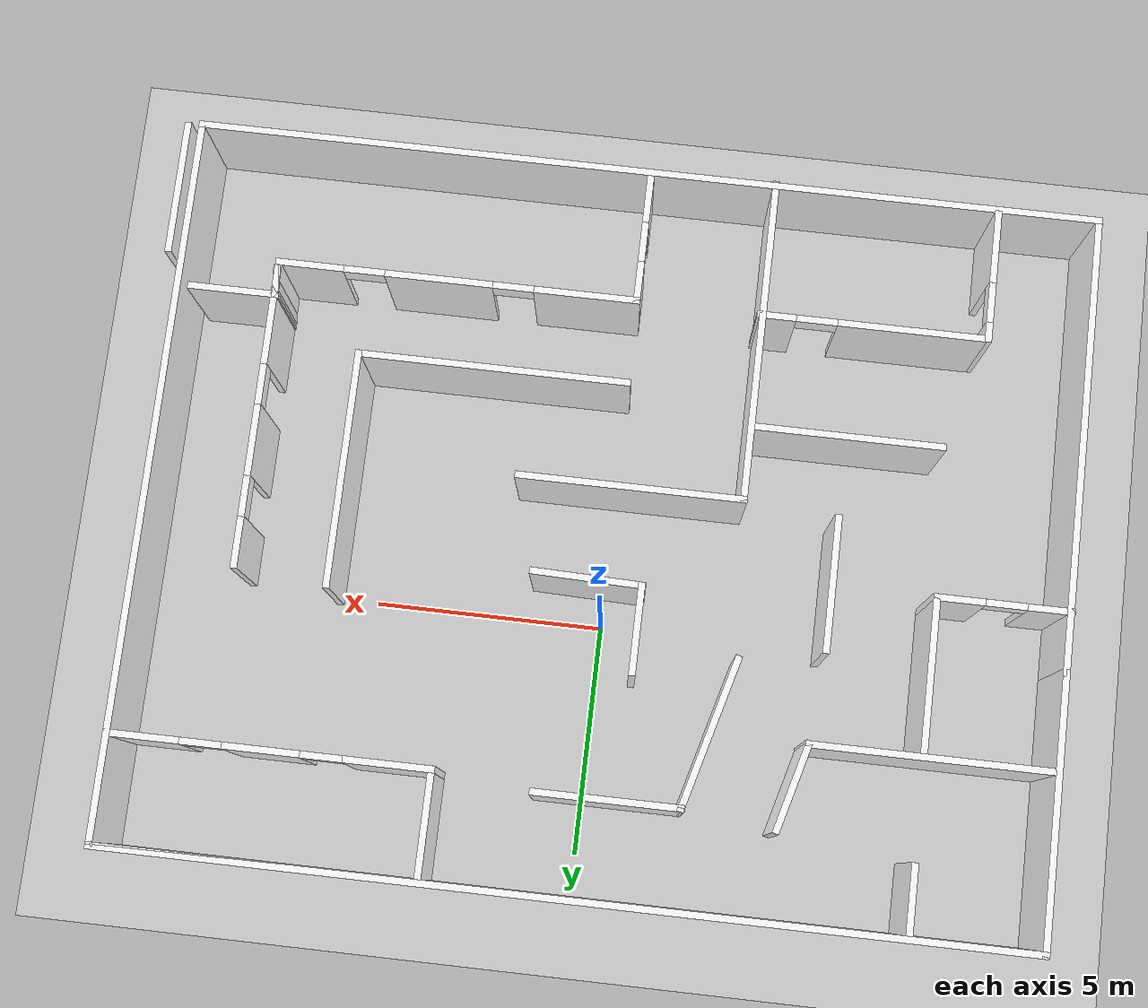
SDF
<?xml version="1.0"?>
<sdf version="1.7">
  <world name="model_world">
    <gravity>0 0 -9.8</gravity>
    <magnetic_field>6e-06 2.3e-05 -4.2e-05</magnetic_field>

    <physics name="default_physics" default="0" type="ode">
      <max_step_size>0.001</max_step_size>
      <real_time_factor>1.0</real_time_factor>
      <real_time_update_rate>1000</real_time_update_rate>
    </physics>

    <include>
      <uri>model://ground_plane</uri>
    </include>
    <include>
      <uri>model://sun</uri>
    </include>
    <include>
      <uri>model://world_model</uri>
    </include>

    <scene>
      <ambient>0.4 0.4 0.4 1</ambient>
      <background>0.7 0.7 0.7 1</background>
      <shadows>true</shadows>
    </scene>
  </world>
</sdf>

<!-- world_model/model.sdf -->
<sdf version='1.7'>
  <model name='Untitled'>
    <pose>0.198493 -1.95427 0 0 -0 0</pose>
    <link name='Wall_100'>
      <collision name='Wall_100_Collision'>
        <geometry>
          <box>
            <size>2.49224 0.15 2.5</size>
          </box>
        </geometry>
        <pose>0 0 1.25 0 -0 0</pose>
      </collision>
      <visual name='Wall_100_Visual'>
        <pose>0 0 1.25 0 -0 0</pose>
        <geometry>
          <box>
            <size>2.49224 0.15 2.5</size>
          </box>
        </geometry>
        <material>
          <script>
            <uri>file://media/materials/scripts/gazebo.material</uri>
            <name>Gazebo/Brick</name>
          </script>
          <ambient>1 1 1 1</ambient>
        </material>
        <meta>
          <layer>0</layer>
        </meta>
      </visual>
      <pose>0.15339 1.22069 0 0 -0 -0.025976</pose>
    </link>
    <link name='Wall_102'>
      <collision name='Wall_102_Collision'>
        <geometry>
          <box>
            <size>3 0.15 2.5</size>
          </box>
        </geometry>
        <pose>0 0 1.25 0 -0 0</pose>
      </collision>
      <visual name='Wall_102_Visual'>
        <pose>0 0 1.25 0 -0 0</pose>
        <geometry>
          <box>
            <size>3 0.15 2.5</size>
          </box>
        </geometry>
        <material>
          <script>
            <uri>file://media/materials/scripts/gazebo.material</uri>
            <name>Gazebo/Brick</name>
          </script>
          <ambient>1 1 1 1</ambient>
        </material>
        <meta>
          <layer>0</layer>
        </meta>
      </visual>
      <pose>-5.01409 0.75488 0 0 -0 -1.5708</pose>
    </link>
    <link name='Wall_104'>
      <collision name='Wall_104_Collision'>
        <geometry>
          <box>
            <size>3.5 0.15 2.5</size>
          </box>
        </geometry>
        <pose>0 0 1.25 0 -0 0</pose>
      </collision>
      <visual name='Wall_104_Visual'>
        <pose>0 0 1.25 0 -0 0</pose>
        <geometry>
          <box>
            <size>3.5 0.15 2.5</size>
          </box>
        </geometry>
        <material>
          <script>
            <uri>file://media/materials/scripts/gazebo.material</uri>
            <name>Gazebo/Brick</name>
          </script>
          <ambient>1 1 1 1</ambient>
        </material>
        <meta>
          <layer>0</layer>
        </meta>
      </visual>
      <pose>-2.75774 4.19362 0 0 -0 -1.8326</pose>
    </link>
    <link name='Wall_14'>
      <collision name='Wall_14_Collision'>
        <geometry>
          <box>
            <size>3.25 0.15 2.5</size>
          </box>
        </geometry>
        <pose>0 0 1.25 0 -0 0</pose>
      </collision>
      <visual name='Wall_14_Visual'>
        <pose>0 0 1.25 0 -0 0</pose>
        <geometry>
          <box>
            <size>3.25 0.15 2.5</size>
          </box>
        </geometry>
        <material>
          <script>
            <uri>file://media/materials/scripts/gazebo.material</uri>
            <name>Gazebo/Brick</name>
          </script>
          <ambient>1 1 1 1</ambient>
        </material>
        <meta>
          <layer>0</layer>
        </meta>
      </visual>
      <pose>-0.774218 5.81154 0 0 -0 0</pose>
    </link>
    <link name='Wall_28'>
      <collision name='Wall_28_Collision'>
        <geometry>
          <box>
            <size>6 0.15 2.5</size>
          </box>
        </geometry>
        <pose>0 0 1.25 0 -0 0</pose>
      </collision>
      <visual name='Wall_28_Visual'>
        <pose>0 0 1.25 0 -0 0</pose>
        <geometry>
          <box>
            <size>6 0.15 2.5</size>
          </box>
        </geometry>
        <material>
          <script>
            <uri>file://media/materials/scripts/gazebo.material</uri>
            <name>Gazebo/Brick</name>
          </script>
          <ambient>1 1 1 1</ambient>
        </material>
        <meta>
          <layer>0</layer>
        </meta>
      </visual>
      <pose>-10.0726 5.01521 0 0 -0 1.5708</pose>
    </link>
    <link name='Wall_29'>
      <collision name='Wall_29_Collision'>
        <geometry>
          <box>
            <size>20 0.15 2.5</size>
          </box>
        </geometry>
        <pose>0 0 1.25 0 -0 0</pose>
      </collision>
      <visual name='Wall_29_Visual'>
        <pose>0 0 1.25 0 -0 0</pose>
        <geometry>
          <box>
            <size>20 0.15 2.5</size>
          </box>
        </geometry>
        <material>
          <script>
            <uri>file://media/materials/scripts/gazebo.material</uri>
            <name>Gazebo/Brick</name>
          </script>
          <ambient>1 1 1 1</ambient>
        </material>
        <meta>
          <layer>0</layer>
        </meta>
      </visual>
      <pose>-0.147617 7.94021 0 0 -0 0</pose>
    </link>
    <link name='Wall_31'>
      <collision name='Wall_31_Collision'>
        <geometry>
          <box>
            <size>16 0.15 2.5</size>
          </box>
        </geometry>
        <pose>0 0 1.25 0 -0 0</pose>
      </collision>
      <visual name='Wall_31_Visual'>
        <pose>0 0 1.25 0 -0 0</pose>
        <geometry>
          <box>
            <size>16 0.15 2.5</size>
          </box>
        </geometry>
        <material>
          <script>
            <uri>file://media/materials/scripts/gazebo.material</uri>
            <name>Gazebo/Brick</name>
          </script>
          <ambient>1 1 1 1</ambient>
        </material>
        <meta>
          <layer>0</layer>
        </meta>
      </visual>
      <pose>9.77738 0.015206 0 0 -0 -1.5708</pose>
    </link>
    <link name='Wall_32'>
      <collision name='Wall_32_Collision'>
        <geometry>
          <box>
            <size>20 0.15 2.5</size>
          </box>
        </geometry>
        <pose>0 0 1.25 0 -0 0</pose>
      </collision>
      <visual name='Wall_32_Visual'>
        <pose>0 0 1.25 0 -0 0</pose>
        <geometry>
          <box>
            <size>20 0.15 2.5</size>
          </box>
        </geometry>
        <material>
          <script>
            <uri>file://media/materials/scripts/gazebo.material</uri>
            <name>Gazebo/Brick</name>
          </script>
          <ambient>1 1 1 1</ambient>
        </material>
        <meta>
          <layer>0</layer>
        </meta>
      </visual>
      <pose>-0.147617 -7.90979 0 0 -0 3.14159</pose>
    </link>
    <link name='Wall_33'>
      <collision name='Wall_33_Collision'>
        <geometry>
          <box>
            <size>10.15 0.15 2.5</size>
          </box>
        </geometry>
        <pose>0 0 1.25 0 -0 0</pose>
      </collision>
      <visual name='Wall_33_Visual'>
        <pose>0 0 1.25 0 -0 0</pose>
        <geometry>
          <box>
            <size>10.15 0.15 2.5</size>
          </box>
        </geometry>
        <material>
          <script>
            <uri>file://media/materials/scripts/gazebo.material</uri>
            <name>Gazebo/Brick</name>
          </script>
          <ambient>1 1 1 1</ambient>
        </material>
        <meta>
          <layer>0</layer>
        </meta>
      </visual>
      <pose>-10.0726 -2.90979 0 0 -0 1.5708</pose>
    </link>
    <link name='Wall_44'>
      <collision name='Wall_44_Collision'>
        <geometry>
          <box>
            <size>1.5 0.15 2.5</size>
          </box>
        </geometry>
        <pose>0 0 1.25 0 -0 0</pose>
      </collision>
      <visual name='Wall_44_Visual'>
        <pose>0 0 1.25 0 -0 0</pose>
        <geometry>
          <box>
            <size>1.5 0.15 2.5</size>
          </box>
        </geometry>
        <material>
          <script>
            <uri>file://media/materials/scripts/gazebo.material</uri>
            <name>Gazebo/Brick</name>
          </script>
          <ambient>1 1 1 1</ambient>
        </material>
        <meta>
          <layer>0</layer>
        </meta>
      </visual>
      <pose>-7.24931 7.1168 0 0 -0 -1.5708</pose>
    </link>
    <link name='Wall_46'>
      <collision name='Wall_46_Collision'>
        <geometry>
          <box>
            <size>3 0.15 2.5</size>
          </box>
        </geometry>
        <pose>0 0 1.25 0 -0 0</pose>
      </collision>
      <visual name='Wall_46_Visual'>
        <pose>0 0 1.25 0 -0 0</pose>
        <geometry>
          <box>
            <size>3 0.15 2.5</size>
          </box>
        </geometry>
        <material>
          <script>
            <uri>file://media/materials/scripts/gazebo.material</uri>
            <name>Gazebo/Brick</name>
          </script>
          <ambient>1 1 1 1</ambient>
        </material>
        <meta>
          <layer>0</layer>
        </meta>
      </visual>
      <pose>10.0887 -6.41515 0 0 -0 1.5708</pose>
    </link>
    <link name='Wall_53'>
      <collision name='Wall_53_Collision'>
        <geometry>
          <box>
            <size>2 0.15 2.5</size>
          </box>
        </geometry>
        <pose>0 0 1.25 0 -0 0</pose>
      </collision>
      <visual name='Wall_53_Visual'>
        <pose>0 0 1.25 0 -0 0</pose>
        <geometry>
          <box>
            <size>2 0.15 2.5</size>
          </box>
        </geometry>
        <material>
          <script>
            <uri>file://media/materials/scripts/gazebo.material</uri>
            <name>Gazebo/Brick</name>
          </script>
          <ambient>1 1 1 1</ambient>
        </material>
        <meta>
          <layer>0</layer>
        </meta>
      </visual>
      <pose>8.54888 -4.21868 0 0 -0 3.14159</pose>
    </link>
    <link name='Wall_54'>
      <collision name='Wall_54_Collision'>
        <geometry>
          <box>
            <size>0.751781 0.15 2.5</size>
          </box>
        </geometry>
        <pose>0 0 1.25 0 -0 0</pose>
      </collision>
      <visual name='Wall_54_Visual'>
        <pose>0 0 1.25 0 -0 0</pose>
        <geometry>
          <box>
            <size>0.751781 0.15 2.5</size>
          </box>
        </geometry>
        <material>
          <script>
            <uri>file://media/materials/scripts/gazebo.material</uri>
            <name>Gazebo/Brick</name>
          </script>
          <ambient>1 1 1 1</ambient>
        </material>
        <meta>
          <layer>0</layer>
        </meta>
      </visual>
      <pose>7.64701 -4.51868 0 0 -0 -1.49385</pose>
    </link>
    <link name='Wall_55'>
      <pose>7.64701 -1.51868 0 0 -0 1.5708</pose>
      <visual name='Wall_55_Visual_0'>
        <pose>-2.25015 0 1.25 0 -0 0</pose>
        <geometry>
          <box>
            <size>2.24969 0.15 2.5</size>
          </box>
        </geometry>
        <material>
          <script>
            <uri>file://media/materials/scripts/gazebo.material</uri>
            <name>Gazebo/Brick</name>
          </script>
          <ambient>1 1 1 1</ambient>
        </material>
        <meta>
          <layer>0</layer>
        </meta>
      </visual>
      <collision name='Wall_55_Collision_0'>
        <geometry>
          <box>
            <size>2.24969 0.15 2.5</size>
          </box>
        </geometry>
        <pose>-2.25015 0 1.25 0 -0 0</pose>
      </collision>
      <visual name='Wall_55_Visual_1'>
        <pose>0.563092 0 1.25 0 -0 0</pose>
        <geometry>
          <box>
            <size>1.57681 0.15 2.5</size>
          </box>
        </geometry>
        <material>
          <script>
            <uri>file://media/materials/scripts/gazebo.material</uri>
            <name>Gazebo/Brick</name>
          </script>
          <ambient>1 1 1 1</ambient>
        </material>
        <meta>
          <layer>0</layer>
        </meta>
      </visual>
      <collision name='Wall_55_Collision_1'>
        <geometry>
          <box>
            <size>1.57681 0.15 2.5</size>
          </box>
        </geometry>
        <pose>0.563092 0 1.25 0 -0 0</pose>
      </collision>
      <visual name='Wall_55_Visual_2'>
        <pose>2.81325 0 1.25 0 -0 0</pose>
        <geometry>
          <box>
            <size>1.1235 0.15 2.5</size>
          </box>
        </geometry>
        <material>
          <script>
            <uri>file://media/materials/scripts/gazebo.material</uri>
            <name>Gazebo/Brick</name>
          </script>
          <ambient>1 1 1 1</ambient>
        </material>
        <meta>
          <layer>0</layer>
        </meta>
      </visual>
      <collision name='Wall_55_Collision_2'>
        <geometry>
          <box>
            <size>1.1235 0.15 2.5</size>
          </box>
        </geometry>
        <pose>2.81325 0 1.25 0 -0 0</pose>
      </collision>
      <visual name='Wall_55_Visual_3'>
        <pose>-0.67531 0 2.25 0 -0 0</pose>
        <geometry>
          <box>
            <size>0.9 0.15 0.5</size>
          </box>
        </geometry>
        <material>
          <script>
            <uri>file://media/materials/scripts/gazebo.material</uri>
            <name>Gazebo/Brick</name>
          </script>
          <ambient>1 1 1 1</ambient>
        </material>
        <meta>
          <layer>0</layer>
        </meta>
      </visual>
      <collision name='Wall_55_Collision_3'>
        <geometry>
          <box>
            <size>0.9 0.15 0.5</size>
          </box>
        </geometry>
        <pose>-0.67531 0 2.25 0 -0 0</pose>
      </collision>
      <visual name='Wall_55_Visual_4'>
        <pose>1.8015 0 2.25 0 -0 0</pose>
        <geometry>
          <box>
            <size>0.9 0.15 0.5</size>
          </box>
        </geometry>
        <material>
          <script>
            <uri>file://media/materials/scripts/gazebo.material</uri>
            <name>Gazebo/Brick</name>
          </script>
          <ambient>1 1 1 1</ambient>
        </material>
        <meta>
          <layer>0</layer>
        </meta>
      </visual>
      <collision name='Wall_55_Collision_4'>
        <geometry>
          <box>
            <size>0.9 0.15 0.5</size>
          </box>
        </geometry>
        <pose>1.8015 0 2.25 0 -0 0</pose>
      </collision>
    </link>
    <link name='Wall_57'>
      <pose>3.71822 -4.96532 0 0 -0 3.14159</pose>
      <visual name='Wall_57_Visual_0'>
        <pose>-3.24949 0 1.25 0 -0 0</pose>
        <geometry>
          <box>
            <size>1.50102 0.15 2.5</size>
          </box>
        </geometry>
        <material>
          <script>
            <uri>file://media/materials/scripts/gazebo.material</uri>
            <name>Gazebo/Brick</name>
          </script>
          <ambient>1 1 1 1</ambient>
        </material>
        <meta>
          <layer>0</layer>
        </meta>
      </visual>
      <collision name='Wall_57_Collision_0'>
        <geometry>
          <box>
            <size>1.50102 0.15 2.5</size>
          </box>
        </geometry>
        <pose>-3.24949 0 1.25 0 -0 0</pose>
      </collision>
      <visual name='Wall_57_Visual_1'>
        <pose>-0.414037 0 1.25 0 -0 0</pose>
        <geometry>
          <box>
            <size>2.36988 0.15 2.5</size>
          </box>
        </geometry>
        <material>
          <script>
            <uri>file://media/materials/scripts/gazebo.material</uri>
            <name>Gazebo/Brick</name>
          </script>
          <ambient>1 1 1 1</ambient>
        </material>
        <meta>
          <layer>0</layer>
        </meta>
      </visual>
      <collision name='Wall_57_Collision_1'>
        <geometry>
          <box>
            <size>2.36988 0.15 2.5</size>
          </box>
        </geometry>
        <pose>-0.414037 0 1.25 0 -0 0</pose>
      </collision>
      <visual name='Wall_57_Visual_2'>
        <pose>2.83545 0 1.25 0 -0 0</pose>
        <geometry>
          <box>
            <size>2.3291 0.15 2.5</size>
          </box>
        </geometry>
        <material>
          <script>
            <uri>file://media/materials/scripts/gazebo.material</uri>
            <name>Gazebo/Brick</name>
          </script>
          <ambient>1 1 1 1</ambient>
        </material>
        <meta>
          <layer>0</layer>
        </meta>
      </visual>
      <collision name='Wall_57_Collision_2'>
        <geometry>
          <box>
            <size>2.3291 0.15 2.5</size>
          </box>
        </geometry>
        <pose>2.83545 0 1.25 0 -0 0</pose>
      </collision>
      <visual name='Wall_57_Visual_3'>
        <pose>-2.04898 0 2.25 0 -0 0</pose>
        <geometry>
          <box>
            <size>0.9 0.15 0.5</size>
          </box>
        </geometry>
        <material>
          <script>
            <uri>file://media/materials/scripts/gazebo.material</uri>
            <name>Gazebo/Brick</name>
          </script>
          <ambient>1 1 1 1</ambient>
        </material>
        <meta>
          <layer>0</layer>
        </meta>
      </visual>
      <collision name='Wall_57_Collision_3'>
        <geometry>
          <box>
            <size>0.9 0.15 0.5</size>
          </box>
        </geometry>
        <pose>-2.04898 0 2.25 0 -0 0</pose>
      </collision>
      <visual name='Wall_57_Visual_4'>
        <pose>1.2209 0 2.25 0 -0 0</pose>
        <geometry>
          <box>
            <size>0.9 0.15 0.5</size>
          </box>
        </geometry>
        <material>
          <script>
            <uri>file://media/materials/scripts/gazebo.material</uri>
            <name>Gazebo/Brick</name>
          </script>
          <ambient>1 1 1 1</ambient>
        </material>
        <meta>
          <layer>0</layer>
        </meta>
      </visual>
      <collision name='Wall_57_Collision_4'>
        <geometry>
          <box>
            <size>0.9 0.15 0.5</size>
          </box>
        </geometry>
        <pose>1.2209 0 2.25 0 -0 0</pose>
      </collision>
    </link>
    <link name='Wall_60'>
      <pose>-0.206783 -6.39032 0 0 -0 -1.5708</pose>
      <visual name='Wall_60_Visual_0'>
        <pose>-1.01807 0 1.25 0 -0 0</pose>
        <geometry>
          <box>
            <size>0.963863 0.15 2.5</size>
          </box>
        </geometry>
        <material>
          <script>
            <uri>file://media/materials/scripts/gazebo.material</uri>
            <name>Gazebo/Brick</name>
          </script>
          <ambient>1 1 1 1</ambient>
        </material>
        <meta>
          <layer>0</layer>
        </meta>
      </visual>
      <collision name='Wall_60_Collision_0'>
        <geometry>
          <box>
            <size>0.963863 0.15 2.5</size>
          </box>
        </geometry>
        <pose>-1.01807 0 1.25 0 -0 0</pose>
      </collision>
      <visual name='Wall_60_Visual_1'>
        <pose>0.931932 0 1.25 0 -0 0</pose>
        <geometry>
          <box>
            <size>1.13614 0.15 2.5</size>
          </box>
        </geometry>
        <material>
          <script>
            <uri>file://media/materials/scripts/gazebo.material</uri>
            <name>Gazebo/Brick</name>
          </script>
          <ambient>1 1 1 1</ambient>
        </material>
        <meta>
          <layer>0</layer>
        </meta>
      </visual>
      <collision name='Wall_60_Collision_1'>
        <geometry>
          <box>
            <size>1.13614 0.15 2.5</size>
          </box>
        </geometry>
        <pose>0.931932 0 1.25 0 -0 0</pose>
      </collision>
      <visual name='Wall_60_Visual_2'>
        <pose>-0.086137 0 2.25 0 -0 0</pose>
        <geometry>
          <box>
            <size>0.9 0.15 0.5</size>
          </box>
        </geometry>
        <material>
          <script>
            <uri>file://media/materials/scripts/gazebo.material</uri>
            <name>Gazebo/Brick</name>
          </script>
          <ambient>1 1 1 1</ambient>
        </material>
        <meta>
          <layer>0</layer>
        </meta>
      </visual>
      <collision name='Wall_60_Collision_2'>
        <geometry>
          <box>
            <size>0.9 0.15 0.5</size>
          </box>
        </geometry>
        <pose>-0.086137 0 2.25 0 -0 0</pose>
      </collision>
    </link>
    <link name='Wall_66'>
      <collision name='Wall_66_Collision'>
        <geometry>
          <box>
            <size>6 0.15 2.5</size>
          </box>
        </geometry>
        <pose>0 0 1.25 0 -0 0</pose>
      </collision>
      <visual name='Wall_66_Visual'>
        <pose>0 0 1.25 0 -0 0</pose>
        <geometry>
          <box>
            <size>6 0.15 2.5</size>
          </box>
        </geometry>
        <material>
          <script>
            <uri>file://media/materials/scripts/gazebo.material</uri>
            <name>Gazebo/Brick</name>
          </script>
          <ambient>1 1 1 1</ambient>
        </material>
        <meta>
          <layer>0</layer>
        </meta>
      </visual>
      <pose>2.71822 -3.11532 0 0 -0 0</pose>
    </link>
    <link name='Wall_69'>
      <collision name='Wall_69_Collision'>
        <geometry>
          <box>
            <size>5.25 0.15 2.5</size>
          </box>
        </geometry>
        <pose>0 0 1.25 0 -0 0</pose>
      </collision>
      <visual name='Wall_69_Visual'>
        <pose>0 0 1.25 0 -0 0</pose>
        <geometry>
          <box>
            <size>5.25 0.15 2.5</size>
          </box>
        </geometry>
        <material>
          <script>
            <uri>file://media/materials/scripts/gazebo.material</uri>
            <name>Gazebo/Brick</name>
          </script>
          <ambient>1 1 1 1</ambient>
        </material>
        <meta>
          <layer>0</layer>
        </meta>
      </visual>
      <pose>5.64322 -0.565323 0 0 -0 1.5708</pose>
    </link>
    <link name='Wall_71'>
      <collision name='Wall_71_Collision'>
        <geometry>
          <box>
            <size>7.25 0.15 2.5</size>
          </box>
        </geometry>
        <pose>0 0 1.25 0 -0 0</pose>
      </collision>
      <visual name='Wall_71_Visual'>
        <pose>0 0 1.25 0 -0 0</pose>
        <geometry>
          <box>
            <size>7.25 0.15 2.5</size>
          </box>
        </geometry>
        <material>
          <script>
            <uri>file://media/materials/scripts/gazebo.material</uri>
            <name>Gazebo/Brick</name>
          </script>
          <ambient>1 1 1 1</ambient>
        </material>
        <meta>
          <layer>0</layer>
        </meta>
      </visual>
      <pose>-2.96257 -4.39021 0 0 -0 1.5708</pose>
    </link>
    <link name='Wall_72'>
      <collision name='Wall_72_Collision'>
        <geometry>
          <box>
            <size>5 0.15 2.5</size>
          </box>
        </geometry>
        <pose>0 0 1.25 0 -0 0</pose>
      </collision>
      <visual name='Wall_72_Visual'>
        <pose>0 0 1.25 0 -0 0</pose>
        <geometry>
          <box>
            <size>5 0.15 2.5</size>
          </box>
        </geometry>
        <material>
          <script>
            <uri>file://media/materials/scripts/gazebo.material</uri>
            <name>Gazebo/Brick</name>
          </script>
          <ambient>1 1 1 1</ambient>
        </material>
        <meta>
          <layer>0</layer>
        </meta>
      </visual>
      <pose>-0.53757 -0.840206 0 0 -0 0</pose>
    </link>
    <link name='Wall_75'>
      <collision name='Wall_75_Collision'>
        <geometry>
          <box>
            <size>5.25 0.15 2.5</size>
          </box>
        </geometry>
        <pose>0 0 1.25 0 -0 0</pose>
      </collision>
      <visual name='Wall_75_Visual'>
        <pose>0 0 1.25 0 -0 0</pose>
        <geometry>
          <box>
            <size>5.25 0.15 2.5</size>
          </box>
        </geometry>
        <material>
          <script>
            <uri>file://media/materials/scripts/gazebo.material</uri>
            <name>Gazebo/Brick</name>
          </script>
          <ambient>1 1 1 1</ambient>
        </material>
        <meta>
          <layer>0</layer>
        </meta>
      </visual>
      <pose>-7.3857 4.18651 0 0 -0 3.14159</pose>
    </link>
    <link name='Wall_80'>
      <collision name='Wall_80_Collision'>
        <geometry>
          <box>
            <size>2.06638 0.15 2.5</size>
          </box>
        </geometry>
        <pose>0 0 1.25 0 -0 0</pose>
      </collision>
      <visual name='Wall_80_Visual'>
        <pose>0 0 1.25 0 -0 0</pose>
        <geometry>
          <box>
            <size>2.06638 0.15 2.5</size>
          </box>
        </geometry>
        <material>
          <script>
            <uri>file://media/materials/scripts/gazebo.material</uri>
            <name>Gazebo/Brick</name>
          </script>
          <ambient>1 1 1 1</ambient>
        </material>
        <meta>
          <layer>0</layer>
        </meta>
      </visual>
      <pose>-4.5857 5.11151 0 0 -0 1.30683</pose>
    </link>
    <link name='Wall_82'>
      <collision name='Wall_82_Collision'>
        <geometry>
          <box>
            <size>3.5 0.15 2.5</size>
          </box>
        </geometry>
        <pose>0 0 1.25 0 -0 0</pose>
      </collision>
      <visual name='Wall_82_Visual'>
        <pose>0 0 1.25 0 -0 0</pose>
        <geometry>
          <box>
            <size>3.5 0.15 2.5</size>
          </box>
        </geometry>
        <material>
          <script>
            <uri>file://media/materials/scripts/gazebo.material</uri>
            <name>Gazebo/Brick</name>
          </script>
          <ambient>1 1 1 1</ambient>
        </material>
        <meta>
          <layer>0</layer>
        </meta>
      </visual>
      <pose>-7.23866 2.46779 0 0 -0 -1.5708</pose>
    </link>
    <link name='Wall_84'>
      <pose>-7.87115 -6.38969 0 0 -0 1.5708</pose>
      <visual name='Wall_84_Visual_0'>
        <pose>-0.675952 0 1.25 0 -0 0</pose>
        <geometry>
          <box>
            <size>1.6481 0.15 2.5</size>
          </box>
        </geometry>
        <material>
          <script>
            <uri>file://media/materials/scripts/gazebo.material</uri>
            <name>Gazebo/Brick</name>
          </script>
          <ambient>1 1 1 1</ambient>
        </material>
        <meta>
          <layer>0</layer>
        </meta>
      </visual>
      <collision name='Wall_84_Collision_0'>
        <geometry>
          <box>
            <size>1.6481 0.15 2.5</size>
          </box>
        </geometry>
        <pose>-0.675952 0 1.25 0 -0 0</pose>
      </collision>
      <visual name='Wall_84_Visual_1'>
        <pose>1.27405 0 1.25 0 -0 0</pose>
        <geometry>
          <box>
            <size>0.451904 0.15 2.5</size>
          </box>
        </geometry>
        <material>
          <script>
            <uri>file://media/materials/scripts/gazebo.material</uri>
            <name>Gazebo/Brick</name>
          </script>
          <ambient>1 1 1 1</ambient>
        </material>
        <meta>
          <layer>0</layer>
        </meta>
      </visual>
      <collision name='Wall_84_Collision_1'>
        <geometry>
          <box>
            <size>0.451904 0.15 2.5</size>
          </box>
        </geometry>
        <pose>1.27405 0 1.25 0 -0 0</pose>
      </collision>
      <visual name='Wall_84_Visual_2'>
        <pose>0.598096 0 2.25 0 -0 0</pose>
        <geometry>
          <box>
            <size>0.9 0.15 0.5</size>
          </box>
        </geometry>
        <material>
          <script>
            <uri>file://media/materials/scripts/gazebo.material</uri>
            <name>Gazebo/Brick</name>
          </script>
          <ambient>1 1 1 1</ambient>
        </material>
        <meta>
          <layer>0</layer>
        </meta>
      </visual>
      <collision name='Wall_84_Collision_2'>
        <geometry>
          <box>
            <size>0.9 0.15 0.5</size>
          </box>
        </geometry>
        <pose>0.598096 0 2.25 0 -0 0</pose>
      </collision>
    </link>
    <link name='Wall_89'>
      <pose>-5.33559 -4.95883 0 0 -0 0</pose>
      <visual name='Wall_89_Visual_0'>
        <pose>-0.879801 0 1.25 0 -0 0</pose>
        <geometry>
          <box>
            <size>3.2404 0.15 2.5</size>
          </box>
        </geometry>
        <material>
          <script>
            <uri>file://media/materials/scripts/gazebo.material</uri>
            <name>Gazebo/Brick</name>
          </script>
          <ambient>1 1 1 1</ambient>
        </material>
        <meta>
          <layer>0</layer>
        </meta>
      </visual>
      <collision name='Wall_89_Collision_0'>
        <geometry>
          <box>
            <size>3.2404 0.15 2.5</size>
          </box>
        </geometry>
        <pose>-0.879801 0 1.25 0 -0 0</pose>
      </collision>
      <visual name='Wall_89_Visual_1'>
        <pose>2.0702 0 1.25 0 -0 0</pose>
        <geometry>
          <box>
            <size>0.859602 0.15 2.5</size>
          </box>
        </geometry>
        <material>
          <script>
            <uri>file://media/materials/scripts/gazebo.material</uri>
            <name>Gazebo/Brick</name>
          </script>
          <ambient>1 1 1 1</ambient>
        </material>
        <meta>
          <layer>0</layer>
        </meta>
      </visual>
      <collision name='Wall_89_Collision_1'>
        <geometry>
          <box>
            <size>0.859602 0.15 2.5</size>
          </box>
        </geometry>
        <pose>2.0702 0 1.25 0 -0 0</pose>
      </collision>
      <visual name='Wall_89_Visual_2'>
        <pose>1.1904 0 2.25 0 -0 0</pose>
        <geometry>
          <box>
            <size>0.9 0.15 0.5</size>
          </box>
        </geometry>
        <material>
          <script>
            <uri>file://media/materials/scripts/gazebo.material</uri>
            <name>Gazebo/Brick</name>
          </script>
          <ambient>1 1 1 1</ambient>
        </material>
        <meta>
          <layer>0</layer>
        </meta>
      </visual>
      <collision name='Wall_89_Collision_2'>
        <geometry>
          <box>
            <size>0.9 0.15 0.5</size>
          </box>
        </geometry>
        <pose>1.1904 0 2.25 0 -0 0</pose>
      </collision>
    </link>
    <link name='Wall_91'>
      <collision name='Wall_91_Collision'>
        <geometry>
          <box>
            <size>7 0.15 2.5</size>
          </box>
        </geometry>
        <pose>0 0 1.25 0 -0 0</pose>
      </collision>
      <visual name='Wall_91_Visual'>
        <pose>0 0 1.25 0 -0 0</pose>
        <geometry>
          <box>
            <size>7 0.15 2.5</size>
          </box>
        </geometry>
        <material>
          <script>
            <uri>file://media/materials/scripts/gazebo.material</uri>
            <name>Gazebo/Brick</name>
          </script>
          <ambient>1 1 1 1</ambient>
        </material>
        <meta>
          <layer>0</layer>
        </meta>
      </visual>
      <pose>6.35238 7.94021 0 0 -0 3.14159</pose>
    </link>
    <link name='Wall_92'>
      <collision name='Wall_92_Collision'>
        <geometry>
          <box>
            <size>2.5 0.15 2.5</size>
          </box>
        </geometry>
        <pose>0 0 1.25 0 -0 0</pose>
      </collision>
      <visual name='Wall_92_Visual'>
        <pose>0 0 1.25 0 -0 0</pose>
        <geometry>
          <box>
            <size>2.5 0.15 2.5</size>
          </box>
        </geometry>
        <material>
          <script>
            <uri>file://media/materials/scripts/gazebo.material</uri>
            <name>Gazebo/Brick</name>
          </script>
          <ambient>1 1 1 1</ambient>
        </material>
        <meta>
          <layer>0</layer>
        </meta>
      </visual>
      <pose>2.92738 6.76521 0 0 -0 -1.5708</pose>
    </link>
    <link name='Wall_93'>
      <pose>6.35238 5.59021 0 0 -0 0</pose>
      <visual name='Wall_93_Visual_0'>
        <pose>-2.52641 0 1.25 0 -0 0</pose>
        <geometry>
          <box>
            <size>1.94719 0.15 2.5</size>
          </box>
        </geometry>
        <material>
          <script>
            <uri>file://media/materials/scripts/gazebo.material</uri>
            <name>Gazebo/Brick</name>
          </script>
          <ambient>1 1 1 1</ambient>
        </material>
        <meta>
          <layer>0</layer>
        </meta>
      </visual>
      <collision name='Wall_93_Collision_0'>
        <geometry>
          <box>
            <size>1.94719 0.15 2.5</size>
          </box>
        </geometry>
        <pose>-2.52641 0 1.25 0 -0 0</pose>
      </collision>
      <visual name='Wall_93_Visual_1'>
        <pose>0.169372 0 1.25 0 -0 0</pose>
        <geometry>
          <box>
            <size>1.64437 0.15 2.5</size>
          </box>
        </geometry>
        <material>
          <script>
            <uri>file://media/materials/scripts/gazebo.material</uri>
            <name>Gazebo/Brick</name>
          </script>
          <ambient>1 1 1 1</ambient>
        </material>
        <meta>
          <layer>0</layer>
        </meta>
      </visual>
      <collision name='Wall_93_Collision_1'>
        <geometry>
          <box>
            <size>1.64437 0.15 2.5</size>
          </box>
        </geometry>
        <pose>0.169372 0 1.25 0 -0 0</pose>
      </collision>
      <visual name='Wall_93_Visual_2'>
        <pose>2.69578 0 1.25 0 -0 0</pose>
        <geometry>
          <box>
            <size>1.60844 0.15 2.5</size>
          </box>
        </geometry>
        <material>
          <script>
            <uri>file://media/materials/scripts/gazebo.material</uri>
            <name>Gazebo/Brick</name>
          </script>
          <ambient>1 1 1 1</ambient>
        </material>
        <meta>
          <layer>0</layer>
        </meta>
      </visual>
      <collision name='Wall_93_Collision_2'>
        <geometry>
          <box>
            <size>1.60844 0.15 2.5</size>
          </box>
        </geometry>
        <pose>2.69578 0 1.25 0 -0 0</pose>
      </collision>
      <visual name='Wall_93_Visual_3'>
        <pose>-1.10281 0 2.25 0 -0 0</pose>
        <geometry>
          <box>
            <size>0.9 0.15 0.5</size>
          </box>
        </geometry>
        <material>
          <script>
            <uri>file://media/materials/scripts/gazebo.material</uri>
            <name>Gazebo/Brick</name>
          </script>
          <ambient>1 1 1 1</ambient>
        </material>
        <meta>
          <layer>0</layer>
        </meta>
      </visual>
      <collision name='Wall_93_Collision_3'>
        <geometry>
          <box>
            <size>0.9 0.15 0.5</size>
          </box>
        </geometry>
        <pose>-1.10281 0 2.25 0 -0 0</pose>
      </collision>
      <visual name='Wall_93_Visual_4'>
        <pose>1.44156 0 2.25 0 -0 0</pose>
        <geometry>
          <box>
            <size>0.9 0.15 0.5</size>
          </box>
        </geometry>
        <material>
          <script>
            <uri>file://media/materials/scripts/gazebo.material</uri>
            <name>Gazebo/Brick</name>
          </script>
          <ambient>1 1 1 1</ambient>
        </material>
        <meta>
          <layer>0</layer>
        </meta>
      </visual>
      <collision name='Wall_93_Collision_4'>
        <geometry>
          <box>
            <size>0.9 0.15 0.5</size>
          </box>
        </geometry>
        <pose>1.44156 0 2.25 0 -0 0</pose>
      </collision>
    </link>
    <link name='Wall_95'>
      <collision name='Wall_95_Collision'>
        <geometry>
          <box>
            <size>4.25 0.15 2.5</size>
          </box>
        </geometry>
        <pose>0 0 1.25 0 -0 0</pose>
      </collision>
      <visual name='Wall_95_Visual'>
        <pose>0 0 1.25 0 -0 0</pose>
        <geometry>
          <box>
            <size>4.25 0.15 2.5</size>
          </box>
        </geometry>
        <material>
          <script>
            <uri>file://media/materials/scripts/gazebo.material</uri>
            <name>Gazebo/Brick</name>
          </script>
          <ambient>1 1 1 1</ambient>
        </material>
        <meta>
          <layer>0</layer>
        </meta>
      </visual>
      <pose>-5.04483 -2.45929 0 0 -0 3.14159</pose>
    </link>
    <link name='Wall_97'>
      <pose>-8.66366 0.792788 0 0 -0 3.14159</pose>
      <visual name='Wall_97_Visual_0'>
        <pose>-0.947217 0 1.25 0 -0 0</pose>
        <geometry>
          <box>
            <size>1.10557 0.15 2.5</size>
          </box>
        </geometry>
        <material>
          <script>
            <uri>file://media/materials/scripts/gazebo.material</uri>
            <name>Gazebo/Brick</name>
          </script>
          <ambient>1 1 1 1</ambient>
        </material>
        <meta>
          <layer>0</layer>
        </meta>
      </visual>
      <collision name='Wall_97_Collision_0'>
        <geometry>
          <box>
            <size>1.10557 0.15 2.5</size>
          </box>
        </geometry>
        <pose>-0.947217 0 1.25 0 -0 0</pose>
      </collision>
      <visual name='Wall_97_Visual_1'>
        <pose>1.00278 0 1.25 0 -0 0</pose>
        <geometry>
          <box>
            <size>0.994434 0.15 2.5</size>
          </box>
        </geometry>
        <material>
          <script>
            <uri>file://media/materials/scripts/gazebo.material</uri>
            <name>Gazebo/Brick</name>
          </script>
          <ambient>1 1 1 1</ambient>
        </material>
        <meta>
          <layer>0</layer>
        </meta>
      </visual>
      <collision name='Wall_97_Collision_1'>
        <geometry>
          <box>
            <size>0.994434 0.15 2.5</size>
          </box>
        </geometry>
        <pose>1.00278 0 1.25 0 -0 0</pose>
      </collision>
      <visual name='Wall_97_Visual_2'>
        <pose>0.055566 0 2.25 0 -0 0</pose>
        <geometry>
          <box>
            <size>0.9 0.15 0.5</size>
          </box>
        </geometry>
        <material>
          <script>
            <uri>file://media/materials/scripts/gazebo.material</uri>
            <name>Gazebo/Brick</name>
          </script>
          <ambient>1 1 1 1</ambient>
        </material>
        <meta>
          <layer>0</layer>
        </meta>
      </visual>
      <collision name='Wall_97_Collision_2'>
        <geometry>
          <box>
            <size>0.9 0.15 0.5</size>
          </box>
        </geometry>
        <pose>0.055566 0 2.25 0 -0 0</pose>
      </collision>
    </link>
    <link name='Wall_99'>
      <collision name='Wall_99_Collision'>
        <geometry>
          <box>
            <size>2 0.15 2.5</size>
          </box>
        </geometry>
        <pose>0 0 1.25 0 -0 0</pose>
      </collision>
      <visual name='Wall_99_Visual'>
        <pose>0 0 1.25 0 -0 0</pose>
        <geometry>
          <box>
            <size>2 0.15 2.5</size>
          </box>
        </geometry>
        <material>
          <script>
            <uri>file://media/materials/scripts/gazebo.material</uri>
            <name>Gazebo/Brick</name>
          </script>
          <ambient>1 1 1 1</ambient>
        </material>
        <meta>
          <layer>0</layer>
        </meta>
      </visual>
      <pose>-1.00213 2.17611 0 0 -0 -1.5708</pose>
    </link>
    <static>1</static>
  </model>
</sdf>
